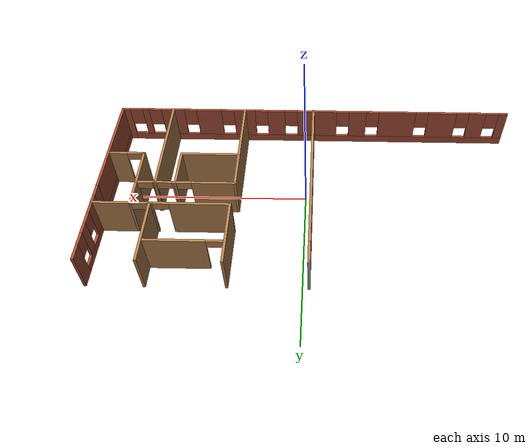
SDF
<sdf version="1.6">
 <model name="myhouse">
  <pose>-0.386417 0.578117 0 0 -0 0</pose>
  <link name="Wall_14">
   <collision name="Wall_14_Collision">
    <geometry><box><size>0.16 0.15 2.5</size></box></geometry>
    <pose>0 0 1.25 0 -0 0</pose>
   </collision>
   <visual name="Wall_14_Visual">
    <pose>0 0 1.25 0 -0 0</pose>
    <geometry><box><size>0.16 0.15 2.5</size></box></geometry>
    <material>
     <script><uri>file://media/materials/scripts/gazebo.material</uri><name>Gazebo/Grey</name></script>
     <ambient>1 1 1 1</ambient>
    </material>
   </visual>
   <pose>0.03462 5.87902 0 0 -0 0</pose>
  </link>
  <link name="Wall_15">
   <pose>0.03962 -0.045979 0 0 0 -1.5708</pose>
   <visual name="Wall_15_Visual_0">
    <pose>-5.3025 0 1.25 0 -0 0</pose>
    <geometry><box><size>1.39499 0.15 2.5</size></box></geometry>
    <material>
     <script><uri>file://media/materials/scripts/gazebo.material</uri><name>Gazebo/Wood</name></script>
     <ambient>1 1 1 1</ambient>
    </material>
   </visual>
   <collision name="Wall_15_Collision_0">
    <geometry><box><size>1.39499 0.15 2.5</size></box></geometry>
    <pose>-5.3025 0 1.25 0 -0 0</pose>
   </collision>
   <visual name="Wall_15_Visual_1">
    <pose>1.1475 0 1.25 0 -0 0</pose>
    <geometry><box><size>9.70501 0.15 2.5</size></box></geometry>
    <material>
     <script><uri>file://media/materials/scripts/gazebo.material</uri><name>Gazebo/Wood</name></script>
     <ambient>1 1 1 1</ambient>
    </material>
   </visual>
   <collision name="Wall_15_Collision_1">
    <geometry><box><size>9.70501 0.15 2.5</size></box></geometry>
    <pose>1.1475 0 1.25 0 -0 0</pose>
   </collision>
   <visual name="Wall_15_Visual_2">
    <pose>-4.15501 0 2.25 0 -0 0</pose>
    <geometry><box><size>0.9 0.15 0.5</size></box></geometry>
    <material>
     <script><uri>file://media/materials/scripts/gazebo.material</uri><name>Gazebo/Wood</name></script>
     <ambient>1 1 1 1</ambient>
    </material>
   </visual>
   <collision name="Wall_15_Collision_2">
    <geometry><box><size>0.9 0.15 0.5</size></box></geometry>
    <pose>-4.15501 0 2.25 0 -0 0</pose>
   </collision>
  </link>
  <link name="Wall_17">
   <collision name="Wall_17_Collision">
    <geometry><box><size>6.5 0.15 2.5</size></box></geometry>
    <pose>0 0 1.25 0 -0 0</pose>
   </collision>
   <visual name="Wall_17_Visual">
    <pose>0 0 1.25 0 -0 0</pose>
    <geometry><box><size>6.5 0.15 2.5</size></box></geometry>
    <material>
     <script><uri>file://media/materials/scripts/gazebo.material</uri><name>Gazebo/Wood</name></script>
     <ambient>1 1 1 1</ambient>
    </material>
   </visual>
   <pose>4.43449 -2.73253 0 0 -0 1.5708</pose>
  </link>
  <link name="Wall_18">
   <pose>6.73449 0.442468 0 0 -0 0</pose>
   <visual name="Wall_18_Visual_0">
    <pose>-1.08415 0 1.25 0 -0 0</pose>
    <geometry><box><size>2.58169 0.15 2.5</size></box></geometry>
    <material>
     <script><uri>file://media/materials/scripts/gazebo.material</uri><name>Gazebo/Wood</name></script>
     <ambient>1 1 1 1</ambient>
    </material>
   </visual>
   <collision name="Wall_18_Collision_0">
    <geometry><box><size>2.58169 0.15 2.5</size></box></geometry>
    <pose>-1.08415 0 1.25 0 -0 0</pose>
   </collision>
   <visual name="Wall_18_Visual_1">
    <pose>1.20982 0 1.25 0 -0 0</pose>
    <geometry><box><size>0.206246 0.15 2.5</size></box></geometry>
    <material>
     <script><uri>file://media/materials/scripts/gazebo.material</uri><name>Gazebo/Wood</name></script>
     <ambient>1 1 1 1</ambient>
    </material>
   </visual>
   <collision name="Wall_18_Collision_1">
    <geometry><box><size>0.206246 0.15 2.5</size></box></geometry>
    <pose>1.20982 0 1.25 0 -0 0</pose>
   </collision>
   <visual name="Wall_18_Visual_2">
    <pose>2.29397 0 1.25 0 -0 0</pose>
    <geometry><box><size>0.162059 0.15 2.5</size></box></geometry>
    <material>
     <script><uri>file://media/materials/scripts/gazebo.material</uri><name>Gazebo/Wood</name></script>
     <ambient>1 1 1 1</ambient>
    </material>
   </visual>
   <collision name="Wall_18_Collision_2">
    <geometry><box><size>0.162059 0.15 2.5</size></box></geometry>
    <pose>2.29397 0 1.25 0 -0 0</pose>
   </collision>
   <visual name="Wall_18_Visual_3">
    <pose>0.656695 0 2.25 0 -0 0</pose>
    <geometry><box><size>0.9 0.15 0.5</size></box></geometry>
    <material>
     <script><uri>file://media/materials/scripts/gazebo.material</uri><name>Gazebo/Wood</name></script>
     <ambient>1 1 1 1</ambient>
    </material>
   </visual>
   <collision name="Wall_18_Collision_3">
    <geometry><box><size>0.9 0.15 0.5</size></box></geometry>
    <pose>0.656695 0 2.25 0 -0 0</pose>
   </collision>
   <visual name="Wall_18_Visual_4">
    <pose>1.76294 0 2.25 0 -0 0</pose>
    <geometry><box><size>0.9 0.15 0.5</size></box></geometry>
    <material>
     <script><uri>file://media/materials/scripts/gazebo.material</uri><name>Gazebo/Wood</name></script>
     <ambient>1 1 1 1</ambient>
    </material>
   </visual>
   <collision name="Wall_18_Collision_4">
    <geometry><box><size>0.9 0.15 0.5</size></box></geometry>
    <pose>1.76294 0 2.25 0 -0 0</pose>
   </collision>
  </link>
  <link name="Wall_19">
   <collision name="Wall_19_Collision">
    <geometry><box><size>6.5 0.15 2.5</size></box></geometry>
    <pose>0 0 1.25 0 -0 0</pose>
   </collision>
   <visual name="Wall_19_Visual">
    <pose>0 0 1.25 0 -0 0</pose>
    <geometry><box><size>6.5 0.15 2.5</size></box></geometry>
    <material>
     <script><uri>file://media/materials/scripts/gazebo.material</uri><name>Gazebo/Wood</name></script>
     <ambient>1 1 1 1</ambient>
    </material>
   </visual>
   <pose>9.03449 -2.73253 0 0 0 -1.5708</pose>
  </link>
  <link name="Wall_21">
   <collision name="Wall_21_Collision">
    <geometry><box><size>2.5 0.15 2.5</size></box></geometry>
    <pose>0 0 1.25 0 -0 0</pose>
   </collision>
   <visual name="Wall_21_Visual">
    <pose>0 0 1.25 0 -0 0</pose>
    <geometry><box><size>2.5 0.15 2.5</size></box></geometry>
    <material>
     <script><uri>file://media/materials/scripts/gazebo.material</uri><name>Gazebo/Wood</name></script>
     <ambient>1 1 1 1</ambient>
    </material>
   </visual>
   <pose>7.87391 -0.726644 0 0 0 -1.5708</pose>
  </link>
  <link name="Wall_22">
   <collision name="Wall_22_Collision">
    <geometry><box><size>3.5 0.15 2.5</size></box></geometry>
    <pose>0 0 1.25 0 -0 0</pose>
   </collision>
   <visual name="Wall_22_Visual">
    <pose>0 0 1.25 0 -0 0</pose>
    <geometry><box><size>3.5 0.15 2.5</size></box></geometry>
    <material>
     <script><uri>file://media/materials/scripts/gazebo.material</uri><name>Gazebo/Wood</name></script>
     <ambient>1 1 1 1</ambient>
    </material>
   </visual>
   <pose>6.19891 -1.90164 0 0 -0 3.14159</pose>
  </link>
  <link name="Wall_24">
   <pose>9.58449 0.442468 0 0 -0 0</pose>
   <visual name="Wall_24_Visual_0">
    <pose>-0.51785 0 1.25 0 -0 0</pose>
    <geometry><box><size>0.214301 0.15 2.5</size></box></geometry>
    <material>
     <script><uri>file://media/materials/scripts/gazebo.material</uri><name>Gazebo/Wood</name></script>
     <ambient>1 1 1 1</ambient>
    </material>
   </visual>
   <collision name="Wall_24_Collision_0">
    <geometry><box><size>0.214301 0.15 2.5</size></box></geometry>
    <pose>-0.51785 0 1.25 0 -0 0</pose>
   </collision>
   <visual name="Wall_24_Visual_1">
    <pose>0.55715 0 1.25 0 -0 0</pose>
    <geometry><box><size>0.135699 0.15 2.5</size></box></geometry>
    <material>
     <script><uri>file://media/materials/scripts/gazebo.material</uri><name>Gazebo/Wood</name></script>
     <ambient>1 1 1 1</ambient>
    </material>
   </visual>
   <collision name="Wall_24_Collision_1">
    <geometry><box><size>0.135699 0.15 2.5</size></box></geometry>
    <pose>0.55715 0 1.25 0 -0 0</pose>
   </collision>
   <visual name="Wall_24_Visual_2">
    <pose>0.039301 0 2.25 0 -0 0</pose>
    <geometry><box><size>0.9 0.15 0.5</size></box></geometry>
    <material>
     <script><uri>file://media/materials/scripts/gazebo.material</uri><name>Gazebo/Wood</name></script>
     <ambient>1 1 1 1</ambient>
    </material>
   </visual>
   <collision name="Wall_24_Collision_2">
    <geometry><box><size>0.9 0.15 0.5</size></box></geometry>
    <pose>0.039301 0 2.25 0 -0 0</pose>
   </collision>
  </link>
  <link name="Wall_25">
   <collision name="Wall_25_Collision">
    <geometry><box><size>1.75 0.15 2.5</size></box></geometry>
    <pose>0 0 1.25 0 -0 0</pose>
   </collision>
   <visual name="Wall_25_Visual">
    <pose>0 0 1.25 0 -0 0</pose>
    <geometry><box><size>1.75 0.15 2.5</size></box></geometry>
    <material>
     <script><uri>file://media/materials/scripts/gazebo.material</uri><name>Gazebo/Wood</name></script>
     <ambient>1 1 1 1</ambient>
    </material>
   </visual>
   <pose>10.1345 1.24247 0 0 -0 1.5708</pose>
  </link>
  <link name="Wall_26">
   <collision name="Wall_26_Collision">
    <geometry><box><size>2.25 0.15 2.5</size></box></geometry>
    <pose>0 0 1.25 0 -0 0</pose>
   </collision>
   <visual name="Wall_26_Visual">
    <pose>0 0 1.25 0 -0 0</pose>
    <geometry><box><size>2.25 0.15 2.5</size></box></geometry>
    <material>
     <script><uri>file://media/materials/scripts/gazebo.material</uri><name>Gazebo/Wood</name></script>
     <ambient>1 1 1 1</ambient>
    </material>
   </visual>
   <pose>11.1845 2.04247 0 0 -0 0</pose>
  </link>
  <link name="Wall_28">
   <collision name="Wall_28_Collision">
    <geometry><box><size>2.5 0.15 2.5</size></box></geometry>
    <pose>0 0 1.25 0 -0 0</pose>
   </collision>
   <visual name="Wall_28_Visual">
    <pose>0 0 1.25 0 -0 0</pose>
    <geometry><box><size>2.5 0.15 2.5</size></box></geometry>
    <material>
     <script><uri>file://media/materials/scripts/gazebo.material</uri><name>Gazebo/Wood</name></script>
     <ambient>1 1 1 1</ambient>
    </material>
   </visual>
   <pose>10.1345 -0.732532 0 0 0 -1.5708</pose>
  </link>
  <link name="Wall_29">
   <pose>11.1845 -1.90753 0 0 -0 0</pose>
   <visual name="Wall_29_Visual_0">
    <pose>-1.02478 0 1.25 0 -0 0</pose>
    <geometry><box><size>0.200434 0.15 2.5</size></box></geometry>
    <material>
     <script><uri>file://media/materials/scripts/gazebo.material</uri><name>Gazebo/Wood</name></script>
     <ambient>1 1 1 1</ambient>
    </material>
   </visual>
   <collision name="Wall_29_Collision_0">
    <geometry><box><size>0.200434 0.15 2.5</size></box></geometry>
    <pose>-1.02478 0 1.25 0 -0 0</pose>
   </collision>
   <visual name="Wall_29_Visual_1">
    <pose>0.550217 0 1.25 0 -0 0</pose>
    <geometry><box><size>1.14957 0.15 2.5</size></box></geometry>
    <material>
     <script><uri>file://media/materials/scripts/gazebo.material</uri><name>Gazebo/Wood</name></script>
     <ambient>1 1 1 1</ambient>
    </material>
   </visual>
   <collision name="Wall_29_Collision_1">
    <geometry><box><size>1.14957 0.15 2.5</size></box></geometry>
    <pose>0.550217 0 1.25 0 -0 0</pose>
   </collision>
   <visual name="Wall_29_Visual_2">
    <pose>-0.474566 0 2.25 0 -0 0</pose>
    <geometry><box><size>0.9 0.15 0.5</size></box></geometry>
    <material>
     <script><uri>file://media/materials/scripts/gazebo.material</uri><name>Gazebo/Wood</name></script>
     <ambient>1 1 1 1</ambient>
    </material>
   </visual>
   <collision name="Wall_29_Collision_2">
    <geometry><box><size>0.9 0.15 0.5</size></box></geometry>
    <pose>-0.474566 0 2.25 0 -0 0</pose>
   </collision>
  </link>
  <link name="Wall_31">
   <pose>7.33449 2.04247 0 0 -0 3.14159</pose>
   <visual name="Wall_31_Visual_0">
    <pose>-2.80715 0 1.25 0 -0 0</pose>
    <geometry><box><size>0.135699 0.15 2.5</size></box></geometry>
    <material>
     <script><uri>file://media/materials/scripts/gazebo.material</uri><name>Gazebo/Wood</name></script>
     <ambient>1 1 1 1</ambient>
    </material>
   </visual>
   <collision name="Wall_31_Collision_0">
    <geometry><box><size>0.135699 0.15 2.5</size></box></geometry>
    <pose>-2.80715 0 1.25 0 -0 0</pose>
   </collision>
   <visual name="Wall_31_Visual_1">
    <pose>-1.69595 0 1.25 0 -0 0</pose>
    <geometry><box><size>0.286701 0.15 2.5</size></box></geometry>
    <material>
     <script><uri>file://media/materials/scripts/gazebo.material</uri><name>Gazebo/Wood</name></script>
     <ambient>1 1 1 1</ambient>
    </material>
   </visual>
   <collision name="Wall_31_Collision_1">
    <geometry><box><size>0.286701 0.15 2.5</size></box></geometry>
    <pose>-1.69595 0 1.25 0 -0 0</pose>
   </collision>
   <visual name="Wall_31_Visual_2">
    <pose>1.1112 0 1.25 0 -0 0</pose>
    <geometry><box><size>3.5276 0.15 2.5</size></box></geometry>
    <material>
     <script><uri>file://media/materials/scripts/gazebo.material</uri><name>Gazebo/Wood</name></script>
     <ambient>1 1 1 1</ambient>
    </material>
   </visual>
   <collision name="Wall_31_Collision_2">
    <geometry><box><size>3.5276 0.15 2.5</size></box></geometry>
    <pose>1.1112 0 1.25 0 -0 0</pose>
   </collision>
   <visual name="Wall_31_Visual_3">
    <pose>-2.2893 0 2.25 0 -0 0</pose>
    <geometry><box><size>0.9 0.15 0.5</size></box></geometry>
    <material>
     <script><uri>file://media/materials/scripts/gazebo.material</uri><name>Gazebo/Wood</name></script>
     <ambient>1 1 1 1</ambient>
    </material>
   </visual>
   <collision name="Wall_31_Collision_3">
    <geometry><box><size>0.9 0.15 0.5</size></box></geometry>
    <pose>-2.2893 0 2.25 0 -0 0</pose>
   </collision>
   <visual name="Wall_31_Visual_4">
    <pose>-1.1026 0 2.25 0 -0 0</pose>
    <geometry><box><size>0.9 0.15 0.5</size></box></geometry>
    <material>
     <script><uri>file://media/materials/scripts/gazebo.material</uri><name>Gazebo/Wood</name></script>
     <ambient>1 1 1 1</ambient>
    </material>
   </visual>
   <collision name="Wall_31_Collision_4">
    <geometry><box><size>0.9 0.15 0.5</size></box></geometry>
    <pose>-1.1026 0 2.25 0 -0 0</pose>
   </collision>
  </link>
  <link name="Wall_32">
   <collision name="Wall_32_Collision">
    <geometry><box><size>4 0.15 2.5</size></box></geometry>
    <pose>0 0 1.25 0 -0 0</pose>
   </collision>
   <visual name="Wall_32_Visual">
    <pose>0 0 1.25 0 -0 0</pose>
    <geometry><box><size>4 0.15 2.5</size></box></geometry>
    <material>
     <script><uri>file://media/materials/scripts/gazebo.material</uri><name>Gazebo/Wood</name></script>
     <ambient>1 1 1 1</ambient>
    </material>
   </visual>
   <pose>4.53449 3.96747 0 0 -0 1.5708</pose>
  </link>
  <link name="Wall_34">
   <collision name="Wall_34_Collision">
    <geometry><box><size>0.16 0.15 2.5</size></box></geometry>
    <pose>0 0 1.25 0 -0 0</pose>
   </collision>
   <visual name="Wall_34_Visual">
    <pose>0 0 1.25 0 -0 0</pose>
    <geometry><box><size>0.16 0.15 2.5</size></box></geometry>
    <material>
     <script><uri>file://media/materials/scripts/gazebo.material</uri><name>Gazebo/Grey</name></script>
     <ambient>1 1 1 1</ambient>
    </material>
   </visual>
   <pose>9.0455 2.05744 0 0 -0 0</pose>
  </link>
  <link name="Wall_35">
   <collision name="Wall_35_Collision">
    <geometry><box><size>4 0.15 2.5</size></box></geometry>
    <pose>0 0 1.25 0 -0 0</pose>
   </collision>
   <visual name="Wall_35_Visual">
    <pose>0 0 1.25 0 -0 0</pose>
    <geometry><box><size>4 0.15 2.5</size></box></geometry>
    <material>
     <script><uri>file://media/materials/scripts/gazebo.material</uri><name>Gazebo/Wood</name></script>
     <ambient>1 1 1 1</ambient>
    </material>
   </visual>
   <pose>9.0505 3.98244 0 0 -0 1.5708</pose>
  </link>
  <link name="Wall_37">
   <pose>6.71006 4.63198 0 0 -0 0</pose>
   <visual name="Wall_37_Visual_0">
    <pose>-2.15591 0 1.25 0 -0 0</pose>
    <geometry><box><size>0.18818 0.15 2.5</size></box></geometry>
    <material>
     <script><uri>file://media/materials/scripts/gazebo.material</uri><name>Gazebo/Wood</name></script>
     <ambient>1 1 1 1</ambient>
    </material>
   </visual>
   <collision name="Wall_37_Collision_0">
    <geometry><box><size>0.18818 0.15 2.5</size></box></geometry>
    <pose>-2.15591 0 1.25 0 -0 0</pose>
   </collision>
   <visual name="Wall_37_Visual_1">
    <pose>0.54409 0 1.25 0 -0 0</pose>
    <geometry><box><size>3.41182 0.15 2.5</size></box></geometry>
    <material>
     <script><uri>file://media/materials/scripts/gazebo.material</uri><name>Gazebo/Wood</name></script>
     <ambient>1 1 1 1</ambient>
    </material>
   </visual>
   <collision name="Wall_37_Collision_1">
    <geometry><box><size>3.41182 0.15 2.5</size></box></geometry>
    <pose>0.54409 0 1.25 0 -0 0</pose>
   </collision>
   <visual name="Wall_37_Visual_2">
    <pose>-1.61182 0 2.25 0 -0 0</pose>
    <geometry><box><size>0.9 0.15 0.5</size></box></geometry>
    <material>
     <script><uri>file://media/materials/scripts/gazebo.material</uri><name>Gazebo/Wood</name></script>
     <ambient>1 1 1 1</ambient>
    </material>
   </visual>
   <collision name="Wall_37_Collision_2">
    <geometry><box><size>0.9 0.15 0.5</size></box></geometry>
    <pose>-1.61182 0 2.25 0 -0 0</pose>
   </collision>
  </link>
  <link name="Wall_8">
   <pose>12.3 -0.005752 0 0 0 -1.5708</pose>
   <visual name="Wall_8_Visual_0">
    <pose>-5.52892 0 1.25 0 -0 0</pose>
    <geometry><box><size>0.942155 0.15 2.5</size></box></geometry>
    <material>
     <script><uri>file://media/materials/scripts/gazebo.material</uri><name>Gazebo/Bricks</name></script>
     <ambient>1 1 1 1</ambient>
    </material>
   </visual>
   <collision name="Wall_8_Collision_0">
    <geometry><box><size>0.942155 0.15 2.5</size></box></geometry>
    <pose>-5.52892 0 1.25 0 -0 0</pose>
   </collision>
   <visual name="Wall_8_Visual_1">
    <pose>0.471077 0 0.25 0 -0 0</pose>
    <geometry><box><size>11.0578 0.15 0.5</size></box></geometry>
    <material>
     <script><uri>file://media/materials/scripts/gazebo.material</uri><name>Gazebo/Bricks</name></script>
     <ambient>1 1 1 1</ambient>
    </material>
   </visual>
   <collision name="Wall_8_Collision_1">
    <geometry><box><size>11.0578 0.15 0.5</size></box></geometry>
    <pose>0.471077 0 0.25 0 -0 0</pose>
   </collision>
   <visual name="Wall_8_Visual_2">
    <pose>-3.91364 0 1.5 0 -0 0</pose>
    <geometry><box><size>0.688405 0.15 2</size></box></geometry>
    <material>
     <script><uri>file://media/materials/scripts/gazebo.material</uri><name>Gazebo/Bricks</name></script>
     <ambient>1 1 1 1</ambient>
    </material>
   </visual>
   <collision name="Wall_8_Collision_2">
    <geometry><box><size>0.688405 0.15 2</size></box></geometry>
    <pose>-3.91364 0 1.5 0 -0 0</pose>
   </collision>
   <visual name="Wall_8_Visual_3">
    <pose>-2.18388 0 1.5 0 -0 0</pose>
    <geometry><box><size>1.17113 0.15 2</size></box></geometry>
    <material>
     <script><uri>file://media/materials/scripts/gazebo.material</uri><name>Gazebo/Bricks</name></script>
     <ambient>1 1 1 1</ambient>
    </material>
   </visual>
   <collision name="Wall_8_Collision_3">
    <geometry><box><size>1.17113 0.15 2</size></box></geometry>
    <pose>-2.18388 0 1.5 0 -0 0</pose>
   </collision>
   <visual name="Wall_8_Visual_4">
    <pose>2.60085 0 1.5 0 -0 0</pose>
    <geometry><box><size>6.79831 0.15 2</size></box></geometry>
    <material>
     <script><uri>file://media/materials/scripts/gazebo.material</uri><name>Gazebo/Bricks</name></script>
     <ambient>1 1 1 1</ambient>
    </material>
   </visual>
   <collision name="Wall_8_Collision_4">
    <geometry><box><size>6.79831 0.15 2</size></box></geometry>
    <pose>2.60085 0 1.5 0 -0 0</pose>
   </collision>
   <visual name="Wall_8_Visual_5">
    <pose>-4.65785 0 1.9 0 -0 0</pose>
    <geometry><box><size>0.8 0.15 1.2</size></box></geometry>
    <material>
     <script><uri>file://media/materials/scripts/gazebo.material</uri><name>Gazebo/Bricks</name></script>
     <ambient>1 1 1 1</ambient>
    </material>
   </visual>
   <collision name="Wall_8_Collision_5">
    <geometry><box><size>0.8 0.15 1.2</size></box></geometry>
    <pose>-4.65785 0 1.9 0 -0 0</pose>
   </collision>
   <visual name="Wall_8_Visual_6">
    <pose>-3.16944 0 1.9 0 -0 0</pose>
    <geometry><box><size>0.8 0.15 1.2</size></box></geometry>
    <material>
     <script><uri>file://media/materials/scripts/gazebo.material</uri><name>Gazebo/Bricks</name></script>
     <ambient>1 1 1 1</ambient>
    </material>
   </visual>
   <collision name="Wall_8_Collision_6">
    <geometry><box><size>0.8 0.15 1.2</size></box></geometry>
    <pose>-3.16944 0 1.9 0 -0 0</pose>
   </collision>
   <visual name="Wall_8_Visual_7">
    <pose>-1.19831 0 1.9 0 -0 0</pose>
    <geometry><box><size>0.8 0.15 1.2</size></box></geometry>
    <material>
     <script><uri>file://media/materials/scripts/gazebo.material</uri><name>Gazebo/Bricks</name></script>
     <ambient>1 1 1 1</ambient>
    </material>
   </visual>
   <collision name="Wall_8_Collision_7">
    <geometry><box><size>0.8 0.15 1.2</size></box></geometry>
    <pose>-1.19831 0 1.9 0 -0 0</pose>
   </collision>
  </link>
  <link name="Wall_9">
   <pose>0 -5.93075 0 0 -0 3.14159</pose>
   <visual name="Wall_9_Visual_0">
    <pose>-12.1045 0 1.25 0 -0 0</pose>
    <geometry><box><size>0.540985 0.15 2.5</size></box></geometry>
    <material>
     <script><uri>file://media/materials/scripts/gazebo.material</uri><name>Gazebo/Bricks</name></script>
     <ambient>1 1 1 1</ambient>
    </material>
   </visual>
   <collision name="Wall_9_Collision_0">
    <geometry><box><size>0.540985 0.15 2.5</size></box></geometry>
    <pose>-12.1045 0 1.25 0 -0 0</pose>
   </collision>
   <visual name="Wall_9_Visual_1">
    <pose>0.270493 0 0.25 0 -0 0</pose>
    <geometry><box><size>24.209 0.15 0.5</size></box></geometry>
    <material>
     <script><uri>file://media/materials/scripts/gazebo.material</uri><name>Gazebo/Bricks</name></script>
     <ambient>1 1 1 1</ambient>
    </material>
   </visual>
   <collision name="Wall_9_Collision_1">
    <geometry><box><size>24.209 0.15 0.5</size></box></geometry>
    <pose>0.270493 0 0.25 0 -0 0</pose>
   </collision>
   <visual name="Wall_9_Visual_2">
    <pose>-10.8306 0 1.5 0 -0 0</pose>
    <geometry><box><size>0.406814 0.15 2</size></box></geometry>
    <material>
     <script><uri>file://media/materials/scripts/gazebo.material</uri><name>Gazebo/Bricks</name></script>
     <ambient>1 1 1 1</ambient>
    </material>
   </visual>
   <collision name="Wall_9_Collision_2">
    <geometry><box><size>0.406814 0.15 2</size></box></geometry>
    <pose>-10.8306 0 1.5 0 -0 0</pose>
   </collision>
   <visual name="Wall_9_Visual_3">
    <pose>-9.09078 0 1.5 0 -0 0</pose>
    <geometry><box><size>1.47283 0.15 2</size></box></geometry>
    <material>
     <script><uri>file://media/materials/scripts/gazebo.material</uri><name>Gazebo/Bricks</name></script>
     <ambient>1 1 1 1</ambient>
    </material>
   </visual>
   <collision name="Wall_9_Collision_3">
    <geometry><box><size>1.47283 0.15 2</size></box></geometry>
    <pose>-9.09078 0 1.5 0 -0 0</pose>
   </collision>
   <visual name="Wall_9_Visual_4">
    <pose>-6.75761 0 1.5 0 -0 0</pose>
    <geometry><box><size>1.59352 0.15 2</size></box></geometry>
    <material>
     <script><uri>file://media/materials/scripts/gazebo.material</uri><name>Gazebo/Bricks</name></script>
     <ambient>1 1 1 1</ambient>
    </material>
   </visual>
   <collision name="Wall_9_Collision_4">
    <geometry><box><size>1.59352 0.15 2</size></box></geometry>
    <pose>-6.75761 0 1.5 0 -0 0</pose>
   </collision>
   <visual name="Wall_9_Visual_5">
    <pose>-4.47472 0 1.5 0 -0 0</pose>
    <geometry><box><size>1.37227 0.15 2</size></box></geometry>
    <material>
     <script><uri>file://media/materials/scripts/gazebo.material</uri><name>Gazebo/Bricks</name></script>
     <ambient>1 1 1 1</ambient>
    </material>
   </visual>
   <collision name="Wall_9_Collision_5">
    <geometry><box><size>1.37227 0.15 2</size></box></geometry>
    <pose>-4.47472 0 1.5 0 -0 0</pose>
   </collision>
   <visual name="Wall_9_Visual_6">
    <pose>-2.43319 0 1.5 0 -0 0</pose>
    <geometry><box><size>1.11079 0.15 2</size></box></geometry>
    <material>
     <script><uri>file://media/materials/scripts/gazebo.material</uri><name>Gazebo/Bricks</name></script>
     <ambient>1 1 1 1</ambient>
    </material>
   </visual>
   <collision name="Wall_9_Collision_6">
    <geometry><box><size>1.11079 0.15 2</size></box></geometry>
    <pose>-2.43319 0 1.5 0 -0 0</pose>
   </collision>
   <visual name="Wall_9_Visual_7">
    <pose>0.19163 0 1.5 0 -0 0</pose>
    <geometry><box><size>2.53885 0.15 2</size></box></geometry>
    <material>
     <script><uri>file://media/materials/scripts/gazebo.material</uri><name>Gazebo/Bricks</name></script>
     <ambient>1 1 1 1</ambient>
    </material>
   </visual>
   <collision name="Wall_9_Collision_7">
    <geometry><box><size>2.53885 0.15 2</size></box></geometry>
    <pose>0.19163 0 1.5 0 -0 0</pose>
   </collision>
   <visual name="Wall_9_Visual_8">
    <pose>2.81645 0 1.5 0 -0 0</pose>
    <geometry><box><size>1.11079 0.15 2</size></box></geometry>
    <material>
     <script><uri>file://media/materials/scripts/gazebo.material</uri><name>Gazebo/Bricks</name></script>
     <ambient>1 1 1 1</ambient>
    </material>
   </visual>
   <collision name="Wall_9_Collision_8">
    <geometry><box><size>1.11079 0.15 2</size></box></geometry>
    <pose>2.81645 0 1.5 0 -0 0</pose>
   </collision>
   <visual name="Wall_9_Visual_9">
    <pose>5.35076 0 1.5 0 -0 0</pose>
    <geometry><box><size>2.35783 0.15 2</size></box></geometry>
    <material>
     <script><uri>file://media/materials/scripts/gazebo.material</uri><name>Gazebo/Bricks</name></script>
     <ambient>1 1 1 1</ambient>
    </material>
   </visual>
   <collision name="Wall_9_Collision_9">
    <geometry><box><size>2.35783 0.15 2</size></box></geometry>
    <pose>5.35076 0 1.5 0 -0 0</pose>
   </collision>
   <visual name="Wall_9_Visual_10">
    <pose>8.23706 0 1.5 0 -0 0</pose>
    <geometry><box><size>1.81476 0.15 2</size></box></geometry>
    <material>
     <script><uri>file://media/materials/scripts/gazebo.material</uri><name>Gazebo/Bricks</name></script>
     <ambient>1 1 1 1</ambient>
    </material>
   </visual>
   <collision name="Wall_9_Collision_10">
    <geometry><box><size>1.81476 0.15 2</size></box></geometry>
    <pose>8.23706 0 1.5 0 -0 0</pose>
   </collision>
   <visual name="Wall_9_Visual_11">
    <pose>10.4797 0 1.5 0 -0 0</pose>
    <geometry><box><size>1.07056 0.15 2</size></box></geometry>
    <material>
     <script><uri>file://media/materials/scripts/gazebo.material</uri><name>Gazebo/Bricks</name></script>
     <ambient>1 1 1 1</ambient>
    </material>
   </visual>
   <collision name="Wall_9_Collision_11">
    <geometry><box><size>1.07056 0.15 2</size></box></geometry>
    <pose>10.4797 0 1.5 0 -0 0</pose>
   </collision>
   <visual name="Wall_9_Visual_12">
    <pose>12.095 0 1.5 0 -0 0</pose>
    <geometry><box><size>0.559998 0.15 2</size></box></geometry>
    <material>
     <script><uri>file://media/materials/scripts/gazebo.material</uri><name>Gazebo/Bricks</name></script>
     <ambient>1 1 1 1</ambient>
    </material>
   </visual>
   <collision name="Wall_9_Collision_12">
    <geometry><box><size>0.559998 0.15 2</size></box></geometry>
    <pose>12.095 0 1.5 0 -0 0</pose>
   </collision>
   <visual name="Wall_9_Visual_13">
    <pose>-11.434 0 1.9 0 -0 0</pose>
    <geometry><box><size>0.8 0.15 1.2</size></box></geometry>
    <material>
     <script><uri>file://media/materials/scripts/gazebo.material</uri><name>Gazebo/Bricks</name></script>
     <ambient>1 1 1 1</ambient>
    </material>
   </visual>
   <collision name="Wall_9_Collision_13">
    <geometry><box><size>0.8 0.15 1.2</size></box></geometry>
    <pose>-11.434 0 1.9 0 -0 0</pose>
   </collision>
   <visual name="Wall_9_Visual_14">
    <pose>-10.2272 0 1.9 0 -0 0</pose>
    <geometry><box><size>0.8 0.15 1.2</size></box></geometry>
    <material>
     <script><uri>file://media/materials/scripts/gazebo.material</uri><name>Gazebo/Bricks</name></script>
     <ambient>1 1 1 1</ambient>
    </material>
   </visual>
   <collision name="Wall_9_Collision_14">
    <geometry><box><size>0.8 0.15 1.2</size></box></geometry>
    <pose>-10.2272 0 1.9 0 -0 0</pose>
   </collision>
   <visual name="Wall_9_Visual_15">
    <pose>-7.95437 0 1.9 0 -0 0</pose>
    <geometry><box><size>0.8 0.15 1.2</size></box></geometry>
    <material>
     <script><uri>file://media/materials/scripts/gazebo.material</uri><name>Gazebo/Bricks</name></script>
     <ambient>1 1 1 1</ambient>
    </material>
   </visual>
   <collision name="Wall_9_Collision_15">
    <geometry><box><size>0.8 0.15 1.2</size></box></geometry>
    <pose>-7.95437 0 1.9 0 -0 0</pose>
   </collision>
   <visual name="Wall_9_Visual_16">
    <pose>-5.56085 0 1.9 0 -0 0</pose>
    <geometry><box><size>0.8 0.15 1.2</size></box></geometry>
    <material>
     <script><uri>file://media/materials/scripts/gazebo.material</uri><name>Gazebo/Bricks</name></script>
     <ambient>1 1 1 1</ambient>
    </material>
   </visual>
   <collision name="Wall_9_Collision_16">
    <geometry><box><size>0.8 0.15 1.2</size></box></geometry>
    <pose>-5.56085 0 1.9 0 -0 0</pose>
   </collision>
   <visual name="Wall_9_Visual_17">
    <pose>-3.38859 0 1.9 0 -0 0</pose>
    <geometry><box><size>0.8 0.15 1.2</size></box></geometry>
    <material>
     <script><uri>file://media/materials/scripts/gazebo.material</uri><name>Gazebo/Bricks</name></script>
     <ambient>1 1 1 1</ambient>
    </material>
   </visual>
   <collision name="Wall_9_Collision_17">
    <geometry><box><size>0.8 0.15 1.2</size></box></geometry>
    <pose>-3.38859 0 1.9 0 -0 0</pose>
   </collision>
   <visual name="Wall_9_Visual_18">
    <pose>-1.4778 0 1.9 0 -0 0</pose>
    <geometry><box><size>0.8 0.15 1.2</size></box></geometry>
    <material>
     <script><uri>file://media/materials/scripts/gazebo.material</uri><name>Gazebo/Bricks</name></script>
     <ambient>1 1 1 1</ambient>
    </material>
   </visual>
   <collision name="Wall_9_Collision_18">
    <geometry><box><size>0.8 0.15 1.2</size></box></geometry>
    <pose>-1.4778 0 1.9 0 -0 0</pose>
   </collision>
   <visual name="Wall_9_Visual_19">
    <pose>1.86106 0 1.9 0 -0 0</pose>
    <geometry><box><size>0.8 0.15 1.2</size></box></geometry>
    <material>
     <script><uri>file://media/materials/scripts/gazebo.material</uri><name>Gazebo/Bricks</name></script>
     <ambient>1 1 1 1</ambient>
    </material>
   </visual>
   <collision name="Wall_9_Collision_19">
    <geometry><box><size>0.8 0.15 1.2</size></box></geometry>
    <pose>1.86106 0 1.9 0 -0 0</pose>
   </collision>
   <visual name="Wall_9_Visual_20">
    <pose>3.77184 0 1.9 0 -0 0</pose>
    <geometry><box><size>0.8 0.15 1.2</size></box></geometry>
    <material>
     <script><uri>file://media/materials/scripts/gazebo.material</uri><name>Gazebo/Bricks</name></script>
     <ambient>1 1 1 1</ambient>
    </material>
   </visual>
   <collision name="Wall_9_Collision_20">
    <geometry><box><size>0.8 0.15 1.2</size></box></geometry>
    <pose>3.77184 0 1.9 0 -0 0</pose>
   </collision>
   <visual name="Wall_9_Visual_21">
    <pose>6.92968 0 1.9 0 -0 0</pose>
    <geometry><box><size>0.8 0.15 1.2</size></box></geometry>
    <material>
     <script><uri>file://media/materials/scripts/gazebo.material</uri><name>Gazebo/Bricks</name></script>
     <ambient>1 1 1 1</ambient>
    </material>
   </visual>
   <collision name="Wall_9_Collision_21">
    <geometry><box><size>0.8 0.15 1.2</size></box></geometry>
    <pose>6.92968 0 1.9 0 -0 0</pose>
   </collision>
   <visual name="Wall_9_Visual_22">
    <pose>9.54444 0 1.9 0 -0 0</pose>
    <geometry><box><size>0.8 0.15 1.2</size></box></geometry>
    <material>
     <script><uri>file://media/materials/scripts/gazebo.material</uri><name>Gazebo/Bricks</name></script>
     <ambient>1 1 1 1</ambient>
    </material>
   </visual>
   <collision name="Wall_9_Collision_22">
    <geometry><box><size>0.8 0.15 1.2</size></box></geometry>
    <pose>9.54444 0 1.9 0 -0 0</pose>
   </collision>
   <visual name="Wall_9_Visual_23">
    <pose>11.415 0 1.9 0 -0 0</pose>
    <geometry><box><size>0.8 0.15 1.2</size></box></geometry>
    <material>
     <script><uri>file://media/materials/scripts/gazebo.material</uri><name>Gazebo/Bricks</name></script>
     <ambient>1 1 1 1</ambient>
    </material>
   </visual>
   <collision name="Wall_9_Collision_23">
    <geometry><box><size>0.8 0.15 1.2</size></box></geometry>
    <pose>11.415 0 1.9 0 -0 0</pose>
   </collision>
  </link>
  <static>1</static>
 </model>
</sdf>
